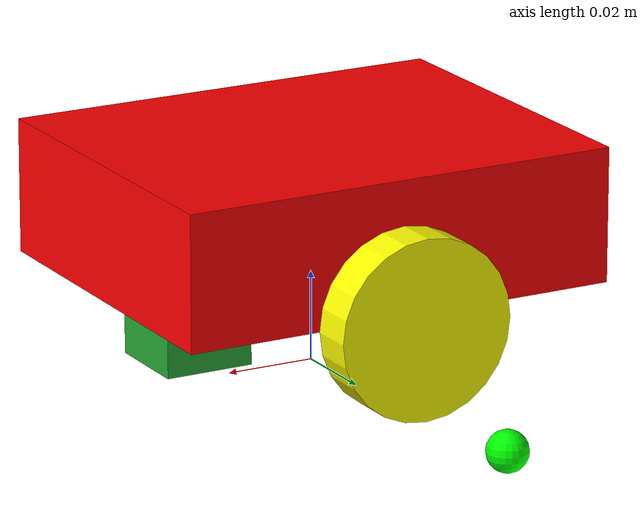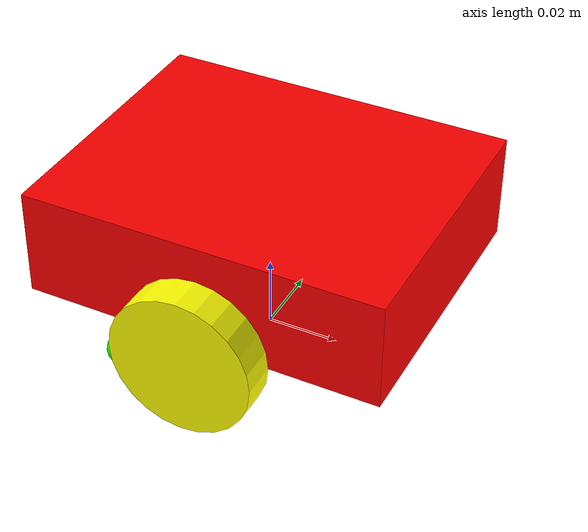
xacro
<?xml version="1.0"?>
<robot xmlns:xacro="http://www.ros.org/wiki/xacro" name="micromouse_robot">

  <xacro:include filename="body.xacro" />
  <xacro:include filename="wheel.xacro" />
  <xacro:include filename="caster.xacro" />

  <material name="Red">
    <color rgba="1 0 0 1"/>
  </material>

  <material name="Yellow">
    <color rgba="1 1 0 1"/>
  </material>

  <material name="Green">
    <color rgba="0 1 0 1"/>
  </material>

  <xacro:property name="pi" value="3.1415926535897931" />

  <xacro:property name="body_density" value="2710" />
  <xacro:property name="body_link_x_dim" value="0.1" />
  <xacro:property name="body_link_y_dim" value="0.08" />
  <xacro:property name="body_link_z_dim" value="0.03" />

  <xacro:property name="wheel_density" value="1200" />
  <xacro:property name="wheel_link_radius" value="0.02" />
  <xacro:property name="wheel_link_length" value="0.01" />
  <xacro:property name="wheel_separation" value="${body_link_y_dim + 0.01}" />

  <xacro:property name="caster_density" value="7870" />
  <xacro:property name="caster_link_radius" value="0.005" />

  <xacro:property name="imu_x_location" value="0" />
  <xacro:property name="imu_y_location" value="0" />
  <xacro:property name="imu_z_location" value="${body_link_z_dim / 2}" />
  <xacro:property name="sensor_lidar_x_location" value="${body_link_x_dim / 2}" />
  <xacro:property name="sensor_lidar_z_location" value="${body_link_z_dim / 2}" />

  <xacro:body
    name="body_link"
    rpy="0 0 0" xyz="0 0 0.036"
    x="${body_link_x_dim}" y="${body_link_y_dim}" z="${body_link_z_dim}"
    density="${body_density}" />

  <xacro:wheel
    name="wheel1_link"
    rpy="${pi/2} 0 0" xyz="0 0 0"
    radius="${wheel_link_radius}" length="${wheel_link_length}"
    density="${wheel_density}" />

  <xacro:wheel
    name="wheel2_link"
    rpy="${pi/2} 0 0" xyz="0 0 0"
    radius="${wheel_link_radius}" length="${wheel_link_length}"
    density="${wheel_density}" />

  <xacro:caster
    name="caster_link"
    rpy="0 0 0" xyz="0 0 0"
    radius="${caster_link_radius}"
    density="${caster_density}" />

  <link name="extra_weight_link">
    <visual>
      <geometry>
        <box size="0.02 0.02 0.02"/>
      </geometry>
    </visual>
    <collision>
      <geometry>
        <box size="0.02 0.02 0.02"/>
      </geometry>
    </collision>
    <xacro:box_inertia m="0.1" l="0.02" w="0.02" h="0.02" />
  </link>

  <joint name="left_wheel_joint" type="continuous">
    <parent link="body_link"/>
    <child link="wheel1_link"/>
    <origin xyz="0 ${wheel_separation / 2} ${-body_link_z_dim / 2 + 0.036}" rpy="0 0 0"/>
    <axis xyz="0 1 0"/>
  </joint>

  <joint name="right_wheel_joint" type="continuous">
    <parent link="body_link"/>
    <child link="wheel2_link"/>
    <origin xyz="0 ${-wheel_separation / 2} ${-body_link_z_dim / 2 + 0.036}" rpy="0 0 0"/>
    <axis xyz="0 1 0"/>
  </joint>

  <joint name="caster_joint" type="fixed">
    <parent link="body_link"/>
    <child link="caster_link"/>
    <origin xyz="${-body_link_x_dim / 2} 0 -0.03" rpy="0 0 0"/>
  </joint>

  <joint name="extra_weight_joint" type="fixed">
    <parent link="body_link"/>
    <child link="extra_weight_link"/>
    <origin xyz="0.03 0 ${body_link_z_dim/2}" rpy="0 0 0"/>
  </joint>

  <xacro:include filename="micromouse_robot.gazebo.xacro" />

</robot>

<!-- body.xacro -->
<robot xmlns:xacro="http://www.ros.org/wiki/xacro">
<xacro:macro name="box_inertia" params="m l w h">
  <inertial>
    <mass value="${m}"/>
    <origin xyz="0 0 0" rpy="0 0 0"/>
    <inertia ixx="${(m/12.0) * (w*w + h*h)}" ixy="0.0" ixz="0.0"
             iyy="${(m/12.0) * (l*l + h*h)}" iyz="0.0"
             izz="${(m/12.0) * (l*l + w*w)}"/>
  </inertial>
</xacro:macro>

<xacro:macro name="body" params="name rpy xyz x y z density">
  <link name="${name}">
    <visual>
      <origin rpy="${rpy}" xyz="${xyz}"/>
      <geometry>
        <box size="${x} ${y} ${z}"/>
      </geometry>
      <material name="Red"/>
    </visual>
    <collision>
      <origin rpy="${rpy}" xyz="${xyz}"/>
      <geometry>
        <box size="${x} ${y} ${z}"/>
      </geometry>
    </collision>
    <!-- mass = x*y*z*density -->
    <xacro:box_inertia m="${x*y*z*density}" l="${x}" w="${y}" h="${z}"/>
  </link>
</xacro:macro>
</robot>

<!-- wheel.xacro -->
<robot xmlns:xacro="http://www.ros.org/wiki/xacro">
<xacro:macro name="cylinder_inertia" params="m r h">
  <inertial>
    <mass value="${m}"/>
    <!-- rotated so cylinder axis aligns as expected -->
    <origin xyz="0 0 0" rpy="${pi/2} 0 0"/>
    <inertia ixx="${(m/12.0) * (3.0*r*r + h*h)}" ixy="0.0" ixz="0.0"
             iyy="${(m/12.0) * (3.0*r*r + h*h)}" iyz="0.0"
             izz="${(m*r*r) / 2.0}"/>
  </inertial>
</xacro:macro>

<xacro:macro name="wheel" params="name rpy xyz radius length density">
  <link name="${name}">
    <visual>
      <origin rpy="${rpy}" xyz="${xyz}"/>
      <geometry>
        <cylinder radius="${radius}" length="${length}"/>
      </geometry>
      <material name="Yellow"/>
    </visual>
    <collision>
      <origin rpy="${rpy}" xyz="${xyz}"/>
      <geometry>
        <cylinder radius="${radius}" length="${length}"/>
      </geometry>
    </collision>
    <!-- cylinder mass = pi * r^2 * length * density -->
    <xacro:cylinder_inertia m="${pi * radius*radius * length * density}" r="${radius}" h="${length}"/>
  </link>
</xacro:macro>
</robot>

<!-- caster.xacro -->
<robot xmlns:xacro="http://www.ros.org/wiki/xacro">
<xacro:macro name="sphere_inertia" params="m r">
  <inertial>
    <mass value="${m}"/>
    <origin xyz="0 0 0" rpy="0 0 0"/>
    <inertia ixx="${(2.0*m*r*r) / 5.0}" ixy="0.0" ixz="0.0"
             iyy="${(2.0*m*r*r) / 5.0}" iyz="0.0"
             izz="${(2.0*m*r*r) / 5.0}"/>
  </inertial>
</xacro:macro>

<xacro:macro name="caster" params="name rpy xyz radius density">
  <link name="${name}">
    <visual>
      <origin rpy="${rpy}" xyz="${xyz}"/>
      <geometry>
        <sphere radius="${radius}"/>
      </geometry>
      <material name="Green"/>
    </visual>
    <collision>
      <origin rpy="${rpy}" xyz="${xyz}"/>
      <geometry>
        <sphere radius="${radius}"/>
      </geometry>
    </collision>
    <!-- sphere volume = 4/3 * pi * r^3 -->
    <xacro:sphere_inertia m="${(4.0/3.0) * pi * radius*radius*radius * density}" r="${radius}"/>
  </link>
</xacro:macro>
</robot>
